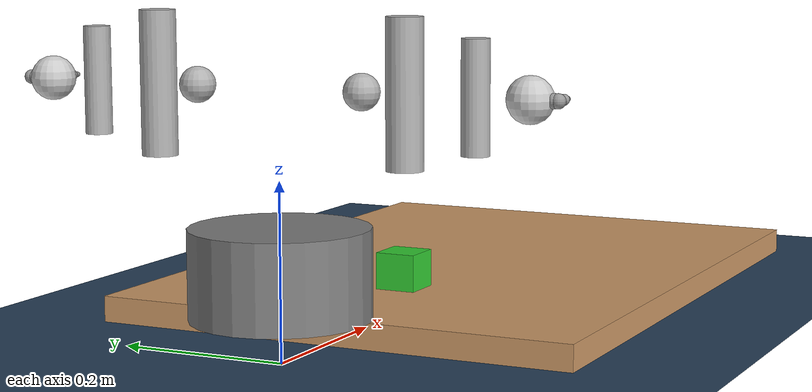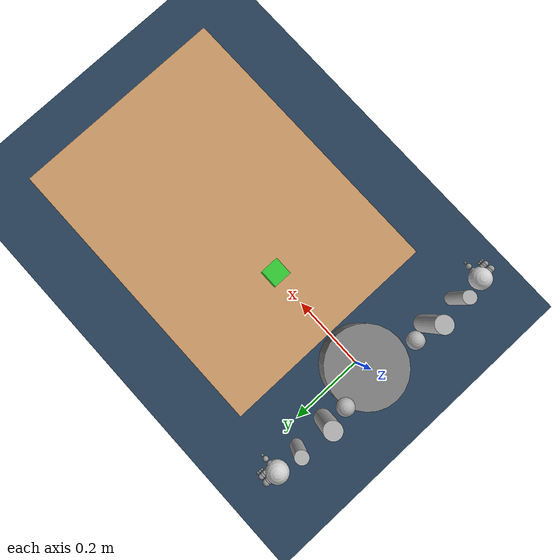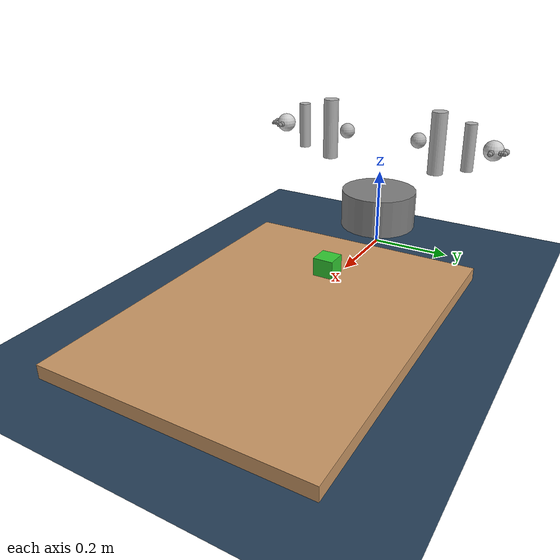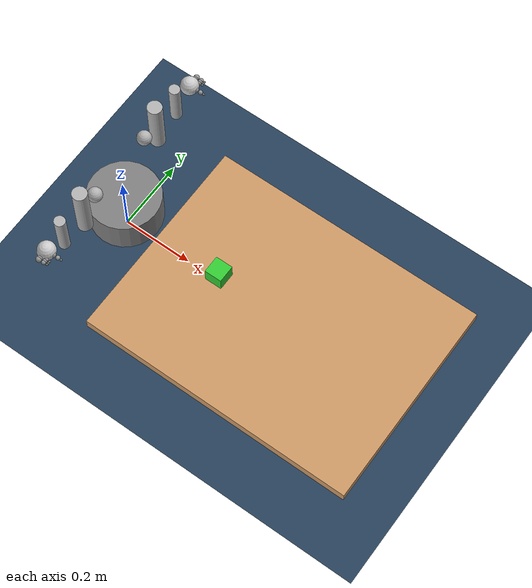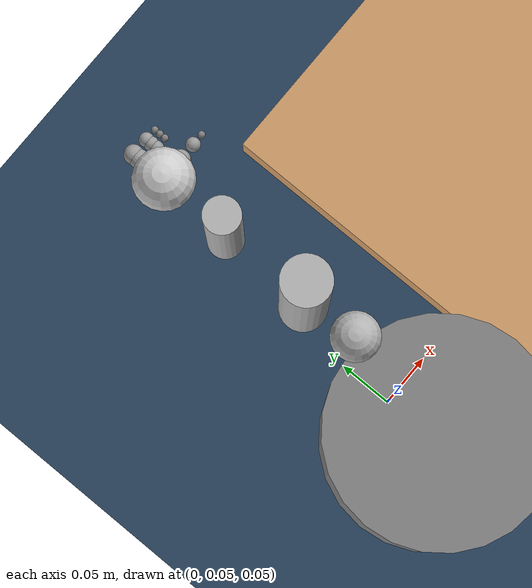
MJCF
<?xml version='1.0' encoding='utf-8'?>
<mujoco model="g1_test">
  <compiler angle="radian" coordinate="local" />
  <option timestep="0.002" iterations="50" solver="Newton" tolerance="1e-10">
    <flag warmstart="enable" energy="enable" />
  </option>
  <size nconmax="100" njmax="1000" nstack="600000" />
  <asset>
    <texture type="skybox" builtin="flat" rgb1="0 0 0" rgb2="0 0 0" width="512" height="3072" />
    <texture type="2d" name="groundplane" builtin="checker" mark="edge" rgb1="0.2 0.3 0.4" rgb2="0.1 0.2 0.3" markrgb="0.8 0.8 0.8" width="300" height="300" />
    <material name="groundplane" texture="groundplane" texuniform="true" texrepeat="5 5" reflectance="0.2" />
  </asset>
  <worldbody>
    <light cutoff="100" diffuse="1 1 1" dir="-0 0 -1.3" directional="true" exponent="1" pos="0 0 1.3" specular=".1 .1 .1" />
    <geom name="floor" size="0 0 0.05" type="plane" material="groundplane" />
    <body name="table" pos="0.5 0 0.01">
      <geom name="table_top" type="box" size="0.4 0.3 0.02" rgba="0.8 0.6 0.4 1" pos="0 0 0" />
    </body>
    <body name="cube" pos="0.3 0 0.05">
      <joint name="cube_free" type="slide" frictionloss="0.01" />
      <geom name="cube_geom" type="box" size="0.025 0.025 0.025" rgba="0.2 0.8 0.2 1" density="1000" friction="1 0.1 0.1" />
    </body>

    <!-- Robot G1 simplifié -->
    <body name="robot_base" pos="0 0 0.1">
      <geom name="base_geom" type="cylinder" size="0.1 0.05" rgba="0.5 0.5 0.5 1" />

      <!-- Bras gauche -->
      <body name="left_shoulder" pos="0 0.1 0.2">
        <joint name="left_shoulder_pitch_joint" type="hinge" axis="0 1 0" range="-3.14 3.14" />
        <geom name="left_shoulder_geom" type="sphere" size="0.02" rgba="0.7 0.7 0.7 1" />

        <body name="left_upper_arm" pos="0 0.05 0">
          <joint name="left_elbow_joint" type="hinge" axis="0 1 0" range="-3.14 3.14" />
          <geom name="left_upper_arm_geom" type="cylinder" size="0.02 0.08" rgba="0.7 0.7 0.7 1" />

          <body name="left_forearm" pos="0 0.08 0">
            <joint name="left_wrist_joint" type="hinge" axis="0 1 0" range="-3.14 3.14" />
            <geom name="left_forearm_geom" type="cylinder" size="0.015 0.06" rgba="0.7 0.7 0.7 1" />

            <body name="left_hand" pos="0 0.06 0">
              <geom name="left_hand_geom" type="sphere" size="0.025" rgba="0.8 0.8 0.8 1" />

              <!-- Doigts gauche -->
              <body name="left_thumb" pos="0.02 0 0">
                <joint name="left_thumb_joint_0" type="hinge" axis="0 1 0" range="0 1.5" />
                <geom name="left_thumb_0_geom" type="sphere" size="0.008" rgba="0.6 0.6 0.6 1" />
                <body name="left_thumb_1" pos="0.015 0 0">
                  <joint name="left_thumb_joint_1" type="hinge" axis="0 1 0" range="0 1.5" />
                  <geom name="left_thumb_1_geom" type="sphere" size="0.006" rgba="0.6 0.6 0.6 1" />
                  <site name="left_thumb_tip_site" pos="0.01 0 0" size="0.003" type="sphere" />
                </body>
              </body>

              <body name="left_index" pos="0 0.02 0">
                <joint name="left_index_joint_0" type="hinge" axis="0 1 0" range="0 1.5" />
                <geom name="left_index_0_geom" type="sphere" size="0.008" rgba="0.6 0.6 0.6 1" />
                <body name="left_index_1" pos="0.015 0 0">
                  <joint name="left_index_joint_1" type="hinge" axis="0 1 0" range="0 1.5" />
                  <geom name="left_index_1_geom" type="sphere" size="0.006" rgba="0.6 0.6 0.6 1" />
                  <site name="left_index_tip_site" pos="0.01 0 0" size="0.003" type="sphere" />
                </body>
              </body>

              <body name="left_middle" pos="0 0.025 0">
                <joint name="left_middle_joint_0" type="hinge" axis="0 1 0" range="0 1.5" />
                <geom name="left_middle_0_geom" type="sphere" size="0.008" rgba="0.6 0.6 0.6 1" />
                <body name="left_middle_1" pos="0.015 0 0">
                  <joint name="left_middle_joint_1" type="hinge" axis="0 1 0" range="0 1.5" />
                  <geom name="left_middle_1_geom" type="sphere" size="0.006" rgba="0.6 0.6 0.6 1" />
                  <site name="left_middle_tip_site" pos="0.01 0 0" size="0.003" type="sphere" />
                </body>
              </body>

              <body name="left_ring" pos="0 0.03 0">
                <joint name="left_ring_joint_0" type="hinge" axis="0 1 0" range="0 1.5" />
                <geom name="left_ring_0_geom" type="sphere" size="0.008" rgba="0.6 0.6 0.6 1" />
                <body name="left_ring_1" pos="0.015 0 0">
                  <joint name="left_ring_joint_1" type="hinge" axis="0 1 0" range="0 1.5" />
                  <geom name="left_ring_1_geom" type="sphere" size="0.006" rgba="0.6 0.6 0.6 1" />
                  <site name="left_ring_tip_site" pos="0.01 0 0" size="0.003" type="sphere" />
                </body>
              </body>
            </body>
          </body>
        </body>
      </body>

      <!-- Bras droit -->
      <body name="right_shoulder" pos="0 -0.1 0.2">
        <joint name="right_shoulder_pitch_joint" type="hinge" axis="0 1 0" range="-3.14 3.14" />
        <geom name="right_shoulder_geom" type="sphere" size="0.02" rgba="0.7 0.7 0.7 1" />

        <body name="right_upper_arm" pos="0 -0.05 0">
          <joint name="right_elbow_joint" type="hinge" axis="0 1 0" range="-3.14 3.14" />
          <geom name="right_upper_arm_geom" type="cylinder" size="0.02 0.08" rgba="0.7 0.7 0.7 1" />

          <body name="right_forearm" pos="0 -0.08 0">
            <joint name="right_wrist_joint" type="hinge" axis="0 1 0" range="-3.14 3.14" />
            <geom name="right_forearm_geom" type="cylinder" size="0.015 0.06" rgba="0.7 0.7 0.7 1" />

            <body name="right_hand" pos="0 -0.06 0">
              <geom name="right_hand_geom" type="sphere" size="0.025" rgba="0.8 0.8 0.8 1" />

              <!-- Doigts droite -->
              <body name="right_thumb" pos="0.02 0 0">
                <joint name="right_thumb_joint_0" type="hinge" axis="0 1 0" range="0 1.5" />
                <geom name="right_thumb_0_geom" type="sphere" size="0.008" rgba="0.6 0.6 0.6 1" />
                <body name="right_thumb_1" pos="0.015 0 0">
                  <joint name="right_thumb_joint_1" type="hinge" axis="0 1 0" range="0 1.5" />
                  <geom name="right_thumb_1_geom" type="sphere" size="0.006" rgba="0.6 0.6 0.6 1" />
                  <site name="right_thumb_tip_site" pos="0.01 0 0" size="0.003" type="sphere" />
                </body>
              </body>

              <body name="right_index" pos="0 -0.02 0">
                <joint name="right_index_joint_0" type="hinge" axis="0 1 0" range="0 1.5" />
                <geom name="right_index_0_geom" type="sphere" size="0.008" rgba="0.6 0.6 0.6 1" />
                <body name="right_index_1" pos="0.015 0 0">
                  <joint name="right_index_joint_1" type="hinge" axis="0 1 0" range="0 1.5" />
                  <geom name="right_index_1_geom" type="sphere" size="0.006" rgba="0.6 0.6 0.6 1" />
                  <site name="right_index_tip_site" pos="0.01 0 0" size="0.003" type="sphere" />
                </body>
              </body>

              <body name="right_middle" pos="0 -0.025 0">
                <joint name="right_middle_joint_0" type="hinge" axis="0 1 0" range="0 1.5" />
                <geom name="right_middle_0_geom" type="sphere" size="0.008" rgba="0.6 0.6 0.6 1" />
                <body name="right_middle_1" pos="0.015 0 0">
                  <joint name="right_middle_joint_1" type="hinge" axis="0 1 0" range="0 1.5" />
                  <geom name="right_middle_1_geom" type="sphere" size="0.006" rgba="0.6 0.6 0.6 1" />
                  <site name="right_middle_tip_site" pos="0.01 0 0" size="0.003" type="sphere" />
                </body>
              </body>

              <body name="right_ring" pos="0 -0.03 0">
                <joint name="right_ring_joint_0" type="hinge" axis="0 1 0" range="0 1.5" />
                <geom name="right_ring_0_geom" type="sphere" size="0.008" rgba="0.6 0.6 0.6 1" />
                <body name="right_ring_1" pos="0.015 0 0">
                  <joint name="right_ring_joint_1" type="hinge" axis="0 1 0" range="0 1.5" />
                  <geom name="right_ring_1_geom" type="sphere" size="0.006" rgba="0.6 0.6 0.6 1" />
                  <site name="right_ring_tip_site" pos="0.01 0 0" size="0.003" type="sphere" />
                </body>
              </body>
            </body>
          </body>
        </body>
      </body>
    </body>
  </worldbody>

  <actuator>
    <position name="act_cube_free" joint="cube_free" gear="1" kp="100" kv="10" />
    <position name="act_left_shoulder_pitch_joint" joint="left_shoulder_pitch_joint" gear="1" kp="100" kv="10" />
    <position name="act_left_elbow_joint" joint="left_elbow_joint" gear="1" kp="100" kv="10" />
    <position name="act_left_wrist_joint" joint="left_wrist_joint" gear="1" kp="100" kv="10" />
    <position name="act_right_shoulder_pitch_joint" joint="right_shoulder_pitch_joint" gear="1" kp="100" kv="10" />
    <position name="act_right_elbow_joint" joint="right_elbow_joint" gear="1" kp="100" kv="10" />
    <position name="act_right_wrist_joint" joint="right_wrist_joint" gear="1" kp="100" kv="10" />
    <position name="act_left_thumb_joint_0" joint="left_thumb_joint_0" gear="1" kp="100" kv="10" />
    <position name="act_left_thumb_joint_1" joint="left_thumb_joint_1" gear="1" kp="100" kv="10" />
    <position name="act_left_index_joint_0" joint="left_index_joint_0" gear="1" kp="100" kv="10" />
    <position name="act_left_index_joint_1" joint="left_index_joint_1" gear="1" kp="100" kv="10" />
    <position name="act_left_middle_joint_0" joint="left_middle_joint_0" gear="1" kp="100" kv="10" />
    <position name="act_left_middle_joint_1" joint="left_middle_joint_1" gear="1" kp="100" kv="10" />
    <position name="act_left_ring_joint_0" joint="left_ring_joint_0" gear="1" kp="100" kv="10" />
    <position name="act_left_ring_joint_1" joint="left_ring_joint_1" gear="1" kp="100" kv="10" />
    <position name="act_right_thumb_joint_0" joint="right_thumb_joint_0" gear="1" kp="100" kv="10" />
    <position name="act_right_thumb_joint_1" joint="right_thumb_joint_1" gear="1" kp="100" kv="10" />
    <position name="act_right_index_joint_0" joint="right_index_joint_0" gear="1" kp="100" kv="10" />
    <position name="act_right_index_joint_1" joint="right_index_joint_1" gear="1" kp="100" kv="10" />
    <position name="act_right_middle_joint_0" joint="right_middle_joint_0" gear="1" kp="100" kv="10" />
    <position name="act_right_middle_joint_1" joint="right_middle_joint_1" gear="1" kp="100" kv="10" />
    <position name="act_right_ring_joint_0" joint="right_ring_joint_0" gear="1" kp="100" kv="10" />
    <position name="act_right_ring_joint_1" joint="right_ring_joint_1" gear="1" kp="100" kv="10" />
  </actuator>

  <sensor>
    <jointpos name="pos_cube_free" joint="cube_free" />
    <jointvel name="vel_cube_free" joint="cube_free" />
    <jointpos name="pos_left_shoulder_pitch_joint" joint="left_shoulder_pitch_joint" />
    <jointvel name="vel_left_shoulder_pitch_joint" joint="left_shoulder_pitch_joint" />
    <jointpos name="pos_left_elbow_joint" joint="left_elbow_joint" />
    <jointvel name="vel_left_elbow_joint" joint="left_elbow_joint" />
    <jointpos name="pos_left_wrist_joint" joint="left_wrist_joint" />
    <jointvel name="vel_left_wrist_joint" joint="left_wrist_joint" />
    <jointpos name="pos_right_shoulder_pitch_joint" joint="right_shoulder_pitch_joint" />
    <jointvel name="vel_right_shoulder_pitch_joint" joint="right_shoulder_pitch_joint" />
    <jointpos name="pos_right_elbow_joint" joint="right_elbow_joint" />
    <jointvel name="vel_right_elbow_joint" joint="right_elbow_joint" />
    <jointpos name="pos_right_wrist_joint" joint="right_wrist_joint" />
    <jointvel name="vel_right_wrist_joint" joint="right_wrist_joint" />
    <jointpos name="pos_left_thumb_joint_0" joint="left_thumb_joint_0" />
    <jointvel name="vel_left_thumb_joint_0" joint="left_thumb_joint_0" />
    <jointpos name="pos_left_thumb_joint_1" joint="left_thumb_joint_1" />
    <jointvel name="vel_left_thumb_joint_1" joint="left_thumb_joint_1" />
    <jointpos name="pos_left_index_joint_0" joint="left_index_joint_0" />
    <jointvel name="vel_left_index_joint_0" joint="left_index_joint_0" />
    <jointpos name="pos_left_index_joint_1" joint="left_index_joint_1" />
    <jointvel name="vel_left_index_joint_1" joint="left_index_joint_1" />
    <jointpos name="pos_left_middle_joint_0" joint="left_middle_joint_0" />
    <jointvel name="vel_left_middle_joint_0" joint="left_middle_joint_0" />
    <jointpos name="pos_left_middle_joint_1" joint="left_middle_joint_1" />
    <jointvel name="vel_left_middle_joint_1" joint="left_middle_joint_1" />
    <jointpos name="pos_left_ring_joint_0" joint="left_ring_joint_0" />
    <jointvel name="vel_left_ring_joint_0" joint="left_ring_joint_0" />
    <jointpos name="pos_left_ring_joint_1" joint="left_ring_joint_1" />
    <jointvel name="vel_left_ring_joint_1" joint="left_ring_joint_1" />
    <jointpos name="pos_right_thumb_joint_0" joint="right_thumb_joint_0" />
    <jointvel name="vel_right_thumb_joint_0" joint="right_thumb_joint_0" />
    <jointpos name="pos_right_thumb_joint_1" joint="right_thumb_joint_1" />
    <jointvel name="vel_right_thumb_joint_1" joint="right_thumb_joint_1" />
    <jointpos name="pos_right_index_joint_0" joint="right_index_joint_0" />
    <jointvel name="vel_right_index_joint_0" joint="right_index_joint_0" />
    <jointpos name="pos_right_index_joint_1" joint="right_index_joint_1" />
    <jointvel name="vel_right_index_joint_1" joint="right_index_joint_1" />
    <jointpos name="pos_right_middle_joint_0" joint="right_middle_joint_0" />
    <jointvel name="vel_right_middle_joint_0" joint="right_middle_joint_0" />
    <jointpos name="pos_right_middle_joint_1" joint="right_middle_joint_1" />
    <jointvel name="vel_right_middle_joint_1" joint="right_middle_joint_1" />
    <jointpos name="pos_right_ring_joint_0" joint="right_ring_joint_0" />
    <jointvel name="vel_right_ring_joint_0" joint="right_ring_joint_0" />
    <jointpos name="pos_right_ring_joint_1" joint="right_ring_joint_1" />
    <jointvel name="vel_right_ring_joint_1" joint="right_ring_joint_1" />
    <framepos name="cube_pos" objtype="body" objname="cube" />
    <framequat name="cube_quat" objtype="body" objname="cube" />
  </sensor>
</mujoco>
